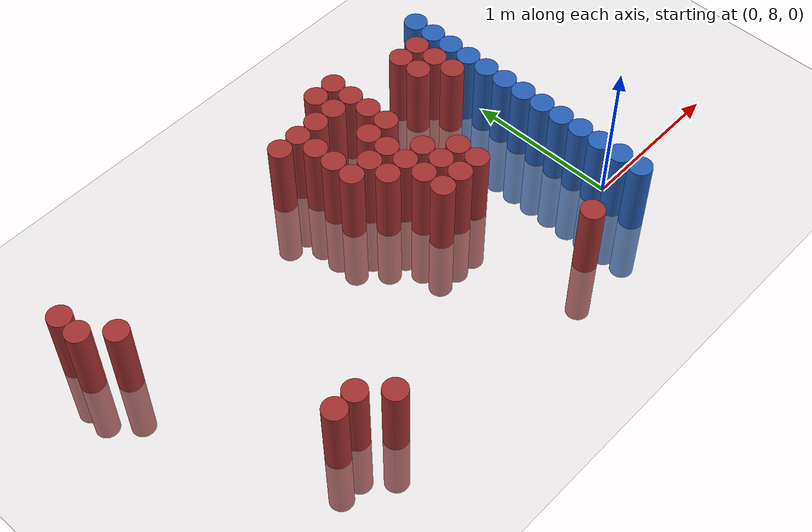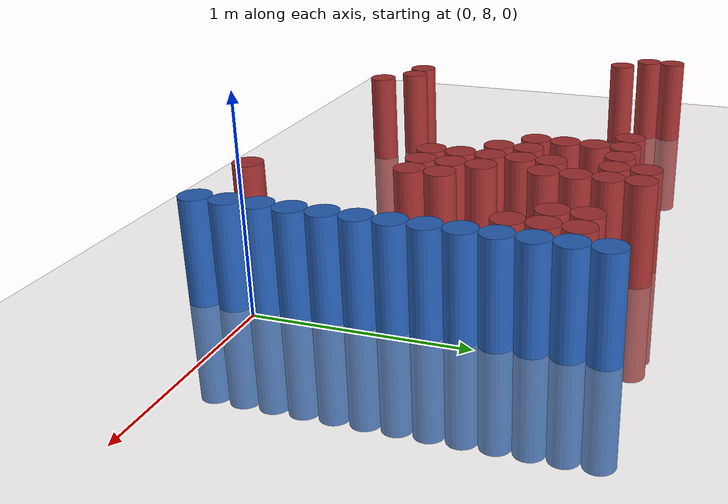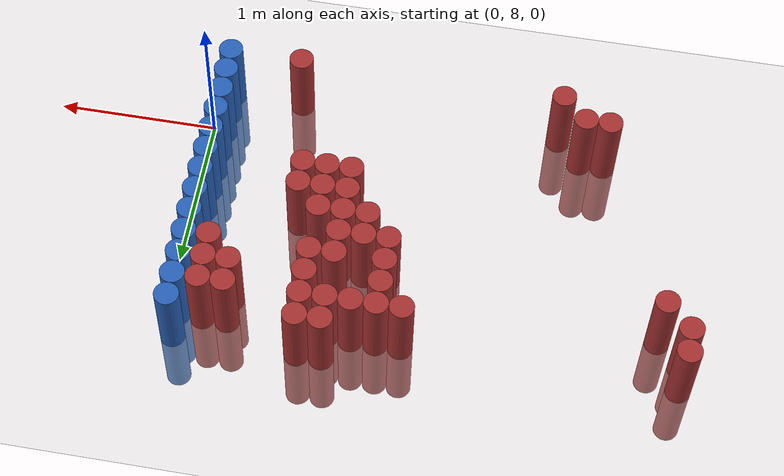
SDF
<sdf version="1.6">
 <world name="default">
  <model name="ground_plane">
   <static>1</static>
   <link name="link">
    <collision name="collision">
     <geometry><plane><normal>0 0 1</normal><size>100 100</size></plane></geometry>
     <surface><friction><ode><mu>100</mu><mu2>50</mu2></ode></friction></surface>
    </collision>
    <visual name="visual">
     <cast_shadows>0</cast_shadows>
     <geometry><plane><normal>0 0 1</normal><size>100 100</size></plane></geometry>
     <material>
      <script><uri>file://media/materials/scripts/gazebo.material</uri><name>Gazebo/Grey</name></script>
     </material>
    </visual>
   </link>
  </model>
  <model name="unit_cylinder_158">
   <static>1</static>
   <pose>-3.075000 9.225000 0.000000 0.000000 0.000000 0.000000</pose>
   <link name="link">
    <inertial>
     <mass>1</mass>
     <inertia><ixx>0.145833</ixx><ixy>0</ixy><ixz>0</ixz><iyy>0.145833</iyy><iyz>0</iyz><izz>0.125</izz></inertia>
    </inertial>
    <collision name="collision">
     <geometry><cylinder><radius>0.075000</radius><length>1</length></cylinder></geometry>
    </collision>
    <visual name="visual">
     <geometry><cylinder><radius>0.075000</radius><length>1</length></cylinder></geometry>
     <material>
      <ambient>0.648000 0.192000 0.192000 1</ambient>
      <diffuse>0.648000 0.192000 0.192000 1</diffuse>
     </material>
     <material>
      <script><name>Gazebo/Grey</name><uri>file://media/materials/scripts/gazebo.material</uri></script>
     </material>
    </visual>
   </link>
  </model>
  <model name="unit_cylinder_159">
   <static>1</static>
   <pose>-3.075000 9.375000 0.000000 0.000000 0.000000 0.000000</pose>
   <link name="link">
    <inertial>
     <mass>1</mass>
     <inertia><ixx>0.145833</ixx><ixy>0</ixy><ixz>0</ixz><iyy>0.145833</iyy><iyz>0</iyz><izz>0.125</izz></inertia>
    </inertial>
    <collision name="collision">
     <geometry><cylinder><radius>0.075000</radius><length>1</length></cylinder></geometry>
    </collision>
    <visual name="visual">
     <geometry><cylinder><radius>0.075000</radius><length>1</length></cylinder></geometry>
     <material>
      <ambient>0.648000 0.192000 0.192000 1</ambient>
      <diffuse>0.648000 0.192000 0.192000 1</diffuse>
     </material>
     <material>
      <script><name>Gazebo/Grey</name><uri>file://media/materials/scripts/gazebo.material</uri></script>
     </material>
    </visual>
   </link>
  </model>
  <model name="unit_cylinder_162">
   <static>1</static>
   <pose>-2.925000 9.075000 0.000000 0.000000 0.000000 0.000000</pose>
   <link name="link">
    <inertial>
     <mass>1</mass>
     <inertia><ixx>0.145833</ixx><ixy>0</ixy><ixz>0</ixz><iyy>0.145833</iyy><iyz>0</iyz><izz>0.125</izz></inertia>
    </inertial>
    <collision name="collision">
     <geometry><cylinder><radius>0.075000</radius><length>1</length></cylinder></geometry>
    </collision>
    <visual name="visual">
     <geometry><cylinder><radius>0.075000</radius><length>1</length></cylinder></geometry>
     <material>
      <ambient>0.648000 0.192000 0.192000 1</ambient>
      <diffuse>0.648000 0.192000 0.192000 1</diffuse>
     </material>
     <material>
      <script><name>Gazebo/Grey</name><uri>file://media/materials/scripts/gazebo.material</uri></script>
     </material>
    </visual>
   </link>
  </model>
  <model name="unit_cylinder_169">
   <static>1</static>
   <pose>-2.475000 7.875000 0.000000 0.000000 0.000000 0.000000</pose>
   <link name="link">
    <inertial>
     <mass>1</mass>
     <inertia><ixx>0.145833</ixx><ixy>0</ixy><ixz>0</ixz><iyy>0.145833</iyy><iyz>0</iyz><izz>0.125</izz></inertia>
    </inertial>
    <collision name="collision">
     <geometry><cylinder><radius>0.075000</radius><length>1</length></cylinder></geometry>
    </collision>
    <visual name="visual">
     <geometry><cylinder><radius>0.075000</radius><length>1</length></cylinder></geometry>
     <material>
      <ambient>0.648000 0.192000 0.192000 1</ambient>
      <diffuse>0.648000 0.192000 0.192000 1</diffuse>
     </material>
     <material>
      <script><name>Gazebo/Grey</name><uri>file://media/materials/scripts/gazebo.material</uri></script>
     </material>
    </visual>
   </link>
  </model>
  <model name="unit_cylinder_176">
   <static>1</static>
   <pose>-2.325000 7.875000 0.000000 0.000000 0.000000 0.000000</pose>
   <link name="link">
    <inertial>
     <mass>1</mass>
     <inertia><ixx>0.145833</ixx><ixy>0</ixy><ixz>0</ixz><iyy>0.145833</iyy><iyz>0</iyz><izz>0.125</izz></inertia>
    </inertial>
    <collision name="collision">
     <geometry><cylinder><radius>0.075000</radius><length>1</length></cylinder></geometry>
    </collision>
    <visual name="visual">
     <geometry><cylinder><radius>0.075000</radius><length>1</length></cylinder></geometry>
     <material>
      <ambient>0.648000 0.192000 0.192000 1</ambient>
      <diffuse>0.648000 0.192000 0.192000 1</diffuse>
     </material>
     <material>
      <script><name>Gazebo/Grey</name><uri>file://media/materials/scripts/gazebo.material</uri></script>
     </material>
    </visual>
   </link>
  </model>
  <model name="unit_cylinder_181">
   <static>1</static>
   <pose>-2.175000 7.725000 0.000000 0.000000 0.000000 0.000000</pose>
   <link name="link">
    <inertial>
     <mass>1</mass>
     <inertia><ixx>0.145833</ixx><ixy>0</ixy><ixz>0</ixz><iyy>0.145833</iyy><iyz>0</iyz><izz>0.125</izz></inertia>
    </inertial>
    <collision name="collision">
     <geometry><cylinder><radius>0.075000</radius><length>1</length></cylinder></geometry>
    </collision>
    <visual name="visual">
     <geometry><cylinder><radius>0.075000</radius><length>1</length></cylinder></geometry>
     <material>
      <ambient>0.648000 0.192000 0.192000 1</ambient>
      <diffuse>0.648000 0.192000 0.192000 1</diffuse>
     </material>
     <material>
      <script><name>Gazebo/Grey</name><uri>file://media/materials/scripts/gazebo.material</uri></script>
     </material>
    </visual>
   </link>
  </model>
  <model name="unit_cylinder_197">
   <static>1</static>
   <pose>-1.425000 9.375000 0.000000 0.000000 0.000000 0.000000</pose>
   <link name="link">
    <inertial>
     <mass>1</mass>
     <inertia><ixx>0.145833</ixx><ixy>0</ixy><ixz>0</ixz><iyy>0.145833</iyy><iyz>0</iyz><izz>0.125</izz></inertia>
    </inertial>
    <collision name="collision">
     <geometry><cylinder><radius>0.075000</radius><length>1</length></cylinder></geometry>
    </collision>
    <visual name="visual">
     <geometry><cylinder><radius>0.075000</radius><length>1</length></cylinder></geometry>
     <material>
      <ambient>0.648000 0.192000 0.192000 1</ambient>
      <diffuse>0.648000 0.192000 0.192000 1</diffuse>
     </material>
     <material>
      <script><name>Gazebo/Grey</name><uri>file://media/materials/scripts/gazebo.material</uri></script>
     </material>
    </visual>
   </link>
  </model>
  <model name="unit_cylinder_199">
   <static>1</static>
   <pose>-1.275000 8.925000 0.000000 0.000000 0.000000 0.000000</pose>
   <link name="link">
    <inertial>
     <mass>1</mass>
     <inertia><ixx>0.145833</ixx><ixy>0</ixy><ixz>0</ixz><iyy>0.145833</iyy><iyz>0</iyz><izz>0.125</izz></inertia>
    </inertial>
    <collision name="collision">
     <geometry><cylinder><radius>0.075000</radius><length>1</length></cylinder></geometry>
    </collision>
    <visual name="visual">
     <geometry><cylinder><radius>0.075000</radius><length>1</length></cylinder></geometry>
     <material>
      <ambient>0.648000 0.192000 0.192000 1</ambient>
      <diffuse>0.648000 0.192000 0.192000 1</diffuse>
     </material>
     <material>
      <script><name>Gazebo/Grey</name><uri>file://media/materials/scripts/gazebo.material</uri></script>
     </material>
    </visual>
   </link>
  </model>
  <model name="unit_cylinder_200">
   <static>1</static>
   <pose>-1.275000 9.075000 0.000000 0.000000 0.000000 0.000000</pose>
   <link name="link">
    <inertial>
     <mass>1</mass>
     <inertia><ixx>0.145833</ixx><ixy>0</ixy><ixz>0</ixz><iyy>0.145833</iyy><iyz>0</iyz><izz>0.125</izz></inertia>
    </inertial>
    <collision name="collision">
     <geometry><cylinder><radius>0.075000</radius><length>1</length></cylinder></geometry>
    </collision>
    <visual name="visual">
     <geometry><cylinder><radius>0.075000</radius><length>1</length></cylinder></geometry>
     <material>
      <ambient>0.648000 0.192000 0.192000 1</ambient>
      <diffuse>0.648000 0.192000 0.192000 1</diffuse>
     </material>
     <material>
      <script><name>Gazebo/Grey</name><uri>file://media/materials/scripts/gazebo.material</uri></script>
     </material>
    </visual>
   </link>
  </model>
  <model name="unit_cylinder_201">
   <static>1</static>
   <pose>-1.275000 9.225000 0.000000 0.000000 0.000000 0.000000</pose>
   <link name="link">
    <inertial>
     <mass>1</mass>
     <inertia><ixx>0.145833</ixx><ixy>0</ixy><ixz>0</ixz><iyy>0.145833</iyy><iyz>0</iyz><izz>0.125</izz></inertia>
    </inertial>
    <collision name="collision">
     <geometry><cylinder><radius>0.075000</radius><length>1</length></cylinder></geometry>
    </collision>
    <visual name="visual">
     <geometry><cylinder><radius>0.075000</radius><length>1</length></cylinder></geometry>
     <material>
      <ambient>0.648000 0.192000 0.192000 1</ambient>
      <diffuse>0.648000 0.192000 0.192000 1</diffuse>
     </material>
     <material>
      <script><name>Gazebo/Grey</name><uri>file://media/materials/scripts/gazebo.material</uri></script>
     </material>
    </visual>
   </link>
  </model>
  <model name="unit_cylinder_202">
   <static>1</static>
   <pose>-1.275000 9.375000 0.000000 0.000000 0.000000 0.000000</pose>
   <link name="link">
    <inertial>
     <mass>1</mass>
     <inertia><ixx>0.145833</ixx><ixy>0</ixy><ixz>0</ixz><iyy>0.145833</iyy><iyz>0</iyz><izz>0.125</izz></inertia>
    </inertial>
    <collision name="collision">
     <geometry><cylinder><radius>0.075000</radius><length>1</length></cylinder></geometry>
    </collision>
    <visual name="visual">
     <geometry><cylinder><radius>0.075000</radius><length>1</length></cylinder></geometry>
     <material>
      <ambient>0.648000 0.192000 0.192000 1</ambient>
      <diffuse>0.648000 0.192000 0.192000 1</diffuse>
     </material>
     <material>
      <script><name>Gazebo/Grey</name><uri>file://media/materials/scripts/gazebo.material</uri></script>
     </material>
    </visual>
   </link>
  </model>
  <model name="unit_cylinder_205">
   <static>1</static>
   <pose>-1.125000 8.775000 0.000000 0.000000 0.000000 0.000000</pose>
   <link name="link">
    <inertial>
     <mass>1</mass>
     <inertia><ixx>0.145833</ixx><ixy>0</ixy><ixz>0</ixz><iyy>0.145833</iyy><iyz>0</iyz><izz>0.125</izz></inertia>
    </inertial>
    <collision name="collision">
     <geometry><cylinder><radius>0.075000</radius><length>1</length></cylinder></geometry>
    </collision>
    <visual name="visual">
     <geometry><cylinder><radius>0.075000</radius><length>1</length></cylinder></geometry>
     <material>
      <ambient>0.648000 0.192000 0.192000 1</ambient>
      <diffuse>0.648000 0.192000 0.192000 1</diffuse>
     </material>
     <material>
      <script><name>Gazebo/Grey</name><uri>file://media/materials/scripts/gazebo.material</uri></script>
     </material>
    </visual>
   </link>
  </model>
  <model name="unit_cylinder_206">
   <static>1</static>
   <pose>-1.125000 8.925000 0.000000 0.000000 0.000000 0.000000</pose>
   <link name="link">
    <inertial>
     <mass>1</mass>
     <inertia><ixx>0.145833</ixx><ixy>0</ixy><ixz>0</ixz><iyy>0.145833</iyy><iyz>0</iyz><izz>0.125</izz></inertia>
    </inertial>
    <collision name="collision">
     <geometry><cylinder><radius>0.075000</radius><length>1</length></cylinder></geometry>
    </collision>
    <visual name="visual">
     <geometry><cylinder><radius>0.075000</radius><length>1</length></cylinder></geometry>
     <material>
      <ambient>0.648000 0.192000 0.192000 1</ambient>
      <diffuse>0.648000 0.192000 0.192000 1</diffuse>
     </material>
     <material>
      <script><name>Gazebo/Grey</name><uri>file://media/materials/scripts/gazebo.material</uri></script>
     </material>
    </visual>
   </link>
  </model>
  <model name="unit_cylinder_207">
   <static>1</static>
   <pose>-1.125000 9.375000 0.000000 0.000000 0.000000 0.000000</pose>
   <link name="link">
    <inertial>
     <mass>1</mass>
     <inertia><ixx>0.145833</ixx><ixy>0</ixy><ixz>0</ixz><iyy>0.145833</iyy><iyz>0</iyz><izz>0.125</izz></inertia>
    </inertial>
    <collision name="collision">
     <geometry><cylinder><radius>0.075000</radius><length>1</length></cylinder></geometry>
    </collision>
    <visual name="visual">
     <geometry><cylinder><radius>0.075000</radius><length>1</length></cylinder></geometry>
     <material>
      <ambient>0.648000 0.192000 0.192000 1</ambient>
      <diffuse>0.648000 0.192000 0.192000 1</diffuse>
     </material>
     <material>
      <script><name>Gazebo/Grey</name><uri>file://media/materials/scripts/gazebo.material</uri></script>
     </material>
    </visual>
   </link>
  </model>
  <model name="unit_cylinder_215">
   <static>1</static>
   <pose>-0.975000 8.475000 0.000000 0.000000 0.000000 0.000000</pose>
   <link name="link">
    <inertial>
     <mass>1</mass>
     <inertia><ixx>0.145833</ixx><ixy>0</ixy><ixz>0</ixz><iyy>0.145833</iyy><iyz>0</iyz><izz>0.125</izz></inertia>
    </inertial>
    <collision name="collision">
     <geometry><cylinder><radius>0.075000</radius><length>1</length></cylinder></geometry>
    </collision>
    <visual name="visual">
     <geometry><cylinder><radius>0.075000</radius><length>1</length></cylinder></geometry>
     <material>
      <ambient>0.648000 0.192000 0.192000 1</ambient>
      <diffuse>0.648000 0.192000 0.192000 1</diffuse>
     </material>
     <material>
      <script><name>Gazebo/Grey</name><uri>file://media/materials/scripts/gazebo.material</uri></script>
     </material>
    </visual>
   </link>
  </model>
  <model name="unit_cylinder_216">
   <static>1</static>
   <pose>-0.975000 8.625000 0.000000 0.000000 0.000000 0.000000</pose>
   <link name="link">
    <inertial>
     <mass>1</mass>
     <inertia><ixx>0.145833</ixx><ixy>0</ixy><ixz>0</ixz><iyy>0.145833</iyy><iyz>0</iyz><izz>0.125</izz></inertia>
    </inertial>
    <collision name="collision">
     <geometry><cylinder><radius>0.075000</radius><length>1</length></cylinder></geometry>
    </collision>
    <visual name="visual">
     <geometry><cylinder><radius>0.075000</radius><length>1</length></cylinder></geometry>
     <material>
      <ambient>0.648000 0.192000 0.192000 1</ambient>
      <diffuse>0.648000 0.192000 0.192000 1</diffuse>
     </material>
     <material>
      <script><name>Gazebo/Grey</name><uri>file://media/materials/scripts/gazebo.material</uri></script>
     </material>
    </visual>
   </link>
  </model>
  <model name="unit_cylinder_217">
   <static>1</static>
   <pose>-0.975000 8.775000 0.000000 0.000000 0.000000 0.000000</pose>
   <link name="link">
    <inertial>
     <mass>1</mass>
     <inertia><ixx>0.145833</ixx><ixy>0</ixy><ixz>0</ixz><iyy>0.145833</iyy><iyz>0</iyz><izz>0.125</izz></inertia>
    </inertial>
    <collision name="collision">
     <geometry><cylinder><radius>0.075000</radius><length>1</length></cylinder></geometry>
    </collision>
    <visual name="visual">
     <geometry><cylinder><radius>0.075000</radius><length>1</length></cylinder></geometry>
     <material>
      <ambient>0.648000 0.192000 0.192000 1</ambient>
      <diffuse>0.648000 0.192000 0.192000 1</diffuse>
     </material>
     <material>
      <script><name>Gazebo/Grey</name><uri>file://media/materials/scripts/gazebo.material</uri></script>
     </material>
    </visual>
   </link>
  </model>
  <model name="unit_cylinder_218">
   <static>1</static>
   <pose>-0.975000 8.925000 0.000000 0.000000 0.000000 0.000000</pose>
   <link name="link">
    <inertial>
     <mass>1</mass>
     <inertia><ixx>0.145833</ixx><ixy>0</ixy><ixz>0</ixz><iyy>0.145833</iyy><iyz>0</iyz><izz>0.125</izz></inertia>
    </inertial>
    <collision name="collision">
     <geometry><cylinder><radius>0.075000</radius><length>1</length></cylinder></geometry>
    </collision>
    <visual name="visual">
     <geometry><cylinder><radius>0.075000</radius><length>1</length></cylinder></geometry>
     <material>
      <ambient>0.648000 0.192000 0.192000 1</ambient>
      <diffuse>0.648000 0.192000 0.192000 1</diffuse>
     </material>
     <material>
      <script><name>Gazebo/Grey</name><uri>file://media/materials/scripts/gazebo.material</uri></script>
     </material>
    </visual>
   </link>
  </model>
  <model name="unit_cylinder_219">
   <static>1</static>
   <pose>-0.975000 9.075000 0.000000 0.000000 0.000000 0.000000</pose>
   <link name="link">
    <inertial>
     <mass>1</mass>
     <inertia><ixx>0.145833</ixx><ixy>0</ixy><ixz>0</ixz><iyy>0.145833</iyy><iyz>0</iyz><izz>0.125</izz></inertia>
    </inertial>
    <collision name="collision">
     <geometry><cylinder><radius>0.075000</radius><length>1</length></cylinder></geometry>
    </collision>
    <visual name="visual">
     <geometry><cylinder><radius>0.075000</radius><length>1</length></cylinder></geometry>
     <material>
      <ambient>0.648000 0.192000 0.192000 1</ambient>
      <diffuse>0.648000 0.192000 0.192000 1</diffuse>
     </material>
     <material>
      <script><name>Gazebo/Grey</name><uri>file://media/materials/scripts/gazebo.material</uri></script>
     </material>
    </visual>
   </link>
  </model>
  <model name="unit_cylinder_220">
   <static>1</static>
   <pose>-0.975000 9.375000 0.000000 0.000000 0.000000 0.000000</pose>
   <link name="link">
    <inertial>
     <mass>1</mass>
     <inertia><ixx>0.145833</ixx><ixy>0</ixy><ixz>0</ixz><iyy>0.145833</iyy><iyz>0</iyz><izz>0.125</izz></inertia>
    </inertial>
    <collision name="collision">
     <geometry><cylinder><radius>0.075000</radius><length>1</length></cylinder></geometry>
    </collision>
    <visual name="visual">
     <geometry><cylinder><radius>0.075000</radius><length>1</length></cylinder></geometry>
     <material>
      <ambient>0.648000 0.192000 0.192000 1</ambient>
      <diffuse>0.648000 0.192000 0.192000 1</diffuse>
     </material>
     <material>
      <script><name>Gazebo/Grey</name><uri>file://media/materials/scripts/gazebo.material</uri></script>
     </material>
    </visual>
   </link>
  </model>
  <model name="unit_cylinder_221">
   <static>1</static>
   <pose>-0.975000 9.525000 0.000000 0.000000 0.000000 0.000000</pose>
   <link name="link">
    <inertial>
     <mass>1</mass>
     <inertia><ixx>0.145833</ixx><ixy>0</ixy><ixz>0</ixz><iyy>0.145833</iyy><iyz>0</iyz><izz>0.125</izz></inertia>
    </inertial>
    <collision name="collision">
     <geometry><cylinder><radius>0.075000</radius><length>1</length></cylinder></geometry>
    </collision>
    <visual name="visual">
     <geometry><cylinder><radius>0.075000</radius><length>1</length></cylinder></geometry>
     <material>
      <ambient>0.648000 0.192000 0.192000 1</ambient>
      <diffuse>0.648000 0.192000 0.192000 1</diffuse>
     </material>
     <material>
      <script><name>Gazebo/Grey</name><uri>file://media/materials/scripts/gazebo.material</uri></script>
     </material>
    </visual>
   </link>
  </model>
  <model name="unit_cylinder_227">
   <static>1</static>
   <pose>-0.825000 8.475000 0.000000 0.000000 0.000000 0.000000</pose>
   <link name="link">
    <inertial>
     <mass>1</mass>
     <inertia><ixx>0.145833</ixx><ixy>0</ixy><ixz>0</ixz><iyy>0.145833</iyy><iyz>0</iyz><izz>0.125</izz></inertia>
    </inertial>
    <collision name="collision">
     <geometry><cylinder><radius>0.075000</radius><length>1</length></cylinder></geometry>
    </collision>
    <visual name="visual">
     <geometry><cylinder><radius>0.075000</radius><length>1</length></cylinder></geometry>
     <material>
      <ambient>0.648000 0.192000 0.192000 1</ambient>
      <diffuse>0.648000 0.192000 0.192000 1</diffuse>
     </material>
     <material>
      <script><name>Gazebo/Grey</name><uri>file://media/materials/scripts/gazebo.material</uri></script>
     </material>
    </visual>
   </link>
  </model>
  <model name="unit_cylinder_228">
   <static>1</static>
   <pose>-0.825000 8.625000 0.000000 0.000000 0.000000 0.000000</pose>
   <link name="link">
    <inertial>
     <mass>1</mass>
     <inertia><ixx>0.145833</ixx><ixy>0</ixy><ixz>0</ixz><iyy>0.145833</iyy><iyz>0</iyz><izz>0.125</izz></inertia>
    </inertial>
    <collision name="collision">
     <geometry><cylinder><radius>0.075000</radius><length>1</length></cylinder></geometry>
    </collision>
    <visual name="visual">
     <geometry><cylinder><radius>0.075000</radius><length>1</length></cylinder></geometry>
     <material>
      <ambient>0.648000 0.192000 0.192000 1</ambient>
      <diffuse>0.648000 0.192000 0.192000 1</diffuse>
     </material>
     <material>
      <script><name>Gazebo/Grey</name><uri>file://media/materials/scripts/gazebo.material</uri></script>
     </material>
    </visual>
   </link>
  </model>
  <model name="unit_cylinder_229">
   <static>1</static>
   <pose>-0.825000 8.775000 0.000000 0.000000 0.000000 0.000000</pose>
   <link name="link">
    <inertial>
     <mass>1</mass>
     <inertia><ixx>0.145833</ixx><ixy>0</ixy><ixz>0</ixz><iyy>0.145833</iyy><iyz>0</iyz><izz>0.125</izz></inertia>
    </inertial>
    <collision name="collision">
     <geometry><cylinder><radius>0.075000</radius><length>1</length></cylinder></geometry>
    </collision>
    <visual name="visual">
     <geometry><cylinder><radius>0.075000</radius><length>1</length></cylinder></geometry>
     <material>
      <ambient>0.648000 0.192000 0.192000 1</ambient>
      <diffuse>0.648000 0.192000 0.192000 1</diffuse>
     </material>
     <material>
      <script><name>Gazebo/Grey</name><uri>file://media/materials/scripts/gazebo.material</uri></script>
     </material>
    </visual>
   </link>
  </model>
  <model name="unit_cylinder_230">
   <static>1</static>
   <pose>-0.825000 9.075000 0.000000 0.000000 0.000000 0.000000</pose>
   <link name="link">
    <inertial>
     <mass>1</mass>
     <inertia><ixx>0.145833</ixx><ixy>0</ixy><ixz>0</ixz><iyy>0.145833</iyy><iyz>0</iyz><izz>0.125</izz></inertia>
    </inertial>
    <collision name="collision">
     <geometry><cylinder><radius>0.075000</radius><length>1</length></cylinder></geometry>
    </collision>
    <visual name="visual">
     <geometry><cylinder><radius>0.075000</radius><length>1</length></cylinder></geometry>
     <material>
      <ambient>0.648000 0.192000 0.192000 1</ambient>
      <diffuse>0.648000 0.192000 0.192000 1</diffuse>
     </material>
     <material>
      <script><name>Gazebo/Grey</name><uri>file://media/materials/scripts/gazebo.material</uri></script>
     </material>
    </visual>
   </link>
  </model>
  <model name="unit_cylinder_231">
   <static>1</static>
   <pose>-0.825000 9.225000 0.000000 0.000000 0.000000 0.000000</pose>
   <link name="link">
    <inertial>
     <mass>1</mass>
     <inertia><ixx>0.145833</ixx><ixy>0</ixy><ixz>0</ixz><iyy>0.145833</iyy><iyz>0</iyz><izz>0.125</izz></inertia>
    </inertial>
    <collision name="collision">
     <geometry><cylinder><radius>0.075000</radius><length>1</length></cylinder></geometry>
    </collision>
    <visual name="visual">
     <geometry><cylinder><radius>0.075000</radius><length>1</length></cylinder></geometry>
     <material>
      <ambient>0.648000 0.192000 0.192000 1</ambient>
      <diffuse>0.648000 0.192000 0.192000 1</diffuse>
     </material>
     <material>
      <script><name>Gazebo/Grey</name><uri>file://media/materials/scripts/gazebo.material</uri></script>
     </material>
    </visual>
   </link>
  </model>
  <model name="unit_cylinder_232">
   <static>1</static>
   <pose>-0.825000 9.375000 0.000000 0.000000 0.000000 0.000000</pose>
   <link name="link">
    <inertial>
     <mass>1</mass>
     <inertia><ixx>0.145833</ixx><ixy>0</ixy><ixz>0</ixz><iyy>0.145833</iyy><iyz>0</iyz><izz>0.125</izz></inertia>
    </inertial>
    <collision name="collision">
     <geometry><cylinder><radius>0.075000</radius><length>1</length></cylinder></geometry>
    </collision>
    <visual name="visual">
     <geometry><cylinder><radius>0.075000</radius><length>1</length></cylinder></geometry>
     <material>
      <ambient>0.648000 0.192000 0.192000 1</ambient>
      <diffuse>0.648000 0.192000 0.192000 1</diffuse>
     </material>
     <material>
      <script><name>Gazebo/Grey</name><uri>file://media/materials/scripts/gazebo.material</uri></script>
     </material>
    </visual>
   </link>
  </model>
  <model name="unit_cylinder_233">
   <static>1</static>
   <pose>-0.825000 9.525000 0.000000 0.000000 0.000000 0.000000</pose>
   <link name="link">
    <inertial>
     <mass>1</mass>
     <inertia><ixx>0.145833</ixx><ixy>0</ixy><ixz>0</ixz><iyy>0.145833</iyy><iyz>0</iyz><izz>0.125</izz></inertia>
    </inertial>
    <collision name="collision">
     <geometry><cylinder><radius>0.075000</radius><length>1</length></cylinder></geometry>
    </collision>
    <visual name="visual">
     <geometry><cylinder><radius>0.075000</radius><length>1</length></cylinder></geometry>
     <material>
      <ambient>0.648000 0.192000 0.192000 1</ambient>
      <diffuse>0.648000 0.192000 0.192000 1</diffuse>
     </material>
     <material>
      <script><name>Gazebo/Grey</name><uri>file://media/materials/scripts/gazebo.material</uri></script>
     </material>
    </visual>
   </link>
  </model>
  <model name="unit_cylinder_241">
   <static>1</static>
   <pose>-0.675000 8.475000 0.000000 0.000000 0.000000 0.000000</pose>
   <link name="link">
    <inertial>
     <mass>1</mass>
     <inertia><ixx>0.145833</ixx><ixy>0</ixy><ixz>0</ixz><iyy>0.145833</iyy><iyz>0</iyz><izz>0.125</izz></inertia>
    </inertial>
    <collision name="collision">
     <geometry><cylinder><radius>0.075000</radius><length>1</length></cylinder></geometry>
    </collision>
    <visual name="visual">
     <geometry><cylinder><radius>0.075000</radius><length>1</length></cylinder></geometry>
     <material>
      <ambient>0.648000 0.192000 0.192000 1</ambient>
      <diffuse>0.648000 0.192000 0.192000 1</diffuse>
     </material>
     <material>
      <script><name>Gazebo/Grey</name><uri>file://media/materials/scripts/gazebo.material</uri></script>
     </material>
    </visual>
   </link>
  </model>
  <model name="unit_cylinder_242">
   <static>1</static>
   <pose>-0.675000 8.625000 0.000000 0.000000 0.000000 0.000000</pose>
   <link name="link">
    <inertial>
     <mass>1</mass>
     <inertia><ixx>0.145833</ixx><ixy>0</ixy><ixz>0</ixz><iyy>0.145833</iyy><iyz>0</iyz><izz>0.125</izz></inertia>
    </inertial>
    <collision name="collision">
     <geometry><cylinder><radius>0.075000</radius><length>1</length></cylinder></geometry>
    </collision>
    <visual name="visual">
     <geometry><cylinder><radius>0.075000</radius><length>1</length></cylinder></geometry>
     <material>
      <ambient>0.648000 0.192000 0.192000 1</ambient>
      <diffuse>0.648000 0.192000 0.192000 1</diffuse>
     </material>
     <material>
      <script><name>Gazebo/Grey</name><uri>file://media/materials/scripts/gazebo.material</uri></script>
     </material>
    </visual>
   </link>
  </model>
  <model name="unit_cylinder_247">
   <static>1</static>
   <pose>-0.525000 7.725000 0.000000 0.000000 0.000000 0.000000</pose>
   <link name="link">
    <inertial>
     <mass>1</mass>
     <inertia><ixx>0.145833</ixx><ixy>0</ixy><ixz>0</ixz><iyy>0.145833</iyy><iyz>0</iyz><izz>0.125</izz></inertia>
    </inertial>
    <collision name="collision">
     <geometry><cylinder><radius>0.075000</radius><length>1</length></cylinder></geometry>
    </collision>
    <visual name="visual">
     <geometry><cylinder><radius>0.075000</radius><length>1</length></cylinder></geometry>
     <material>
      <ambient>0.648000 0.192000 0.192000 1</ambient>
      <diffuse>0.648000 0.192000 0.192000 1</diffuse>
     </material>
     <material>
      <script><name>Gazebo/Grey</name><uri>file://media/materials/scripts/gazebo.material</uri></script>
     </material>
    </visual>
   </link>
  </model>
  <model name="unit_cylinder_250">
   <static>1</static>
   <pose>-0.375000 9.225000 0.000000 0.000000 0.000000 0.000000</pose>
   <link name="link">
    <inertial>
     <mass>1</mass>
     <inertia><ixx>0.145833</ixx><ixy>0</ixy><ixz>0</ixz><iyy>0.145833</iyy><iyz>0</iyz><izz>0.125</izz></inertia>
    </inertial>
    <collision name="collision">
     <geometry><cylinder><radius>0.075000</radius><length>1</length></cylinder></geometry>
    </collision>
    <visual name="visual">
     <geometry><cylinder><radius>0.075000</radius><length>1</length></cylinder></geometry>
     <material>
      <ambient>0.648000 0.192000 0.192000 1</ambient>
      <diffuse>0.648000 0.192000 0.192000 1</diffuse>
     </material>
     <material>
      <script><name>Gazebo/Grey</name><uri>file://media/materials/scripts/gazebo.material</uri></script>
     </material>
    </visual>
   </link>
  </model>
  <model name="unit_cylinder_251">
   <static>1</static>
   <pose>-0.375000 9.375000 0.000000 0.000000 0.000000 0.000000</pose>
   <link name="link">
    <inertial>
     <mass>1</mass>
     <inertia><ixx>0.145833</ixx><ixy>0</ixy><ixz>0</ixz><iyy>0.145833</iyy><iyz>0</iyz><izz>0.125</izz></inertia>
    </inertial>
    <collision name="collision">
     <geometry><cylinder><radius>0.075000</radius><length>1</length></cylinder></geometry>
    </collision>
    <visual name="visual">
     <geometry><cylinder><radius>0.075000</radius><length>1</length></cylinder></geometry>
     <material>
      <ambient>0.648000 0.192000 0.192000 1</ambient>
      <diffuse>0.648000 0.192000 0.192000 1</diffuse>
     </material>
     <material>
      <script><name>Gazebo/Grey</name><uri>file://media/materials/scripts/gazebo.material</uri></script>
     </material>
    </visual>
   </link>
  </model>
  <model name="unit_cylinder_261">
   <static>1</static>
   <pose>-0.225000 9.075000 0.000000 0.000000 0.000000 0.000000</pose>
   <link name="link">
    <inertial>
     <mass>1</mass>
     <inertia><ixx>0.145833</ixx><ixy>0</ixy><ixz>0</ixz><iyy>0.145833</iyy><iyz>0</iyz><izz>0.125</izz></inertia>
    </inertial>
    <collision name="collision">
     <geometry><cylinder><radius>0.075000</radius><length>1</length></cylinder></geometry>
    </collision>
    <visual name="visual">
     <geometry><cylinder><radius>0.075000</radius><length>1</length></cylinder></geometry>
     <material>
      <ambient>0.648000 0.192000 0.192000 1</ambient>
      <diffuse>0.648000 0.192000 0.192000 1</diffuse>
     </material>
     <material>
      <script><name>Gazebo/Grey</name><uri>file://media/materials/scripts/gazebo.material</uri></script>
     </material>
    </visual>
   </link>
  </model>
  <model name="unit_cylinder_262">
   <static>1</static>
   <pose>-0.225000 9.225000 0.000000 0.000000 0.000000 0.000000</pose>
   <link name="link">
    <inertial>
     <mass>1</mass>
     <inertia><ixx>0.145833</ixx><ixy>0</ixy><ixz>0</ixz><iyy>0.145833</iyy><iyz>0</iyz><izz>0.125</izz></inertia>
    </inertial>
    <collision name="collision">
     <geometry><cylinder><radius>0.075000</radius><length>1</length></cylinder></geometry>
    </collision>
    <visual name="visual">
     <geometry><cylinder><radius>0.075000</radius><length>1</length></cylinder></geometry>
     <material>
      <ambient>0.648000 0.192000 0.192000 1</ambient>
      <diffuse>0.648000 0.192000 0.192000 1</diffuse>
     </material>
     <material>
      <script><name>Gazebo/Grey</name><uri>file://media/materials/scripts/gazebo.material</uri></script>
     </material>
    </visual>
   </link>
  </model>
  <model name="unit_cylinder_263">
   <static>1</static>
   <pose>-0.225000 9.375000 0.000000 0.000000 0.000000 0.000000</pose>
   <link name="link">
    <inertial>
     <mass>1</mass>
     <inertia><ixx>0.145833</ixx><ixy>0</ixy><ixz>0</ixz><iyy>0.145833</iyy><iyz>0</iyz><izz>0.125</izz></inertia>
    </inertial>
    <collision name="collision">
     <geometry><cylinder><radius>0.075000</radius><length>1</length></cylinder></geometry>
    </collision>
    <visual name="visual">
     <geometry><cylinder><radius>0.075000</radius><length>1</length></cylinder></geometry>
     <material>
      <ambient>0.648000 0.192000 0.192000 1</ambient>
      <diffuse>0.648000 0.192000 0.192000 1</diffuse>
     </material>
     <material>
      <script><name>Gazebo/Grey</name><uri>file://media/materials/scripts/gazebo.material</uri></script>
     </material>
    </visual>
   </link>
  </model>
  <model name="unit_cylinder_281">
   <static>1</static>
   <pose>-0.075000 7.725000 0.000000 0.000000 0.000000 0.000000</pose>
   <link name="link">
    <inertial>
     <mass>1</mass>
     <inertia><ixx>0.145833</ixx><ixy>0</ixy><ixz>0</ixz><iyy>0.145833</iyy><iyz>0</iyz><izz>0.125</izz></inertia>
    </inertial>
    <collision name="collision">
     <geometry><cylinder><radius>0.075000</radius><length>1</length></cylinder></geometry>
    </collision>
    <visual name="visual">
     <geometry><cylinder><radius>0.075000</radius><length>1</length></cylinder></geometry>
     <material>
      <ambient>0.152000 0.379000 0.720000 1</ambient>
      <diffuse>0.152000 0.379000 0.720000 1</diffuse>
     </material>
     <material>
      <script><name>Gazebo/Grey</name><uri>file://media/materials/scripts/gazebo.material</uri></script>
     </material>
    </visual>
   </link>
  </model>
  <model name="unit_cylinder_282">
   <static>1</static>
   <pose>-0.075000 7.875000 0.000000 0.000000 0.000000 0.000000</pose>
   <link name="link">
    <inertial>
     <mass>1</mass>
     <inertia><ixx>0.145833</ixx><ixy>0</ixy><ixz>0</ixz><iyy>0.145833</iyy><iyz>0</iyz><izz>0.125</izz></inertia>
    </inertial>
    <collision name="collision">
     <geometry><cylinder><radius>0.075000</radius><length>1</length></cylinder></geometry>
    </collision>
    <visual name="visual">
     <geometry><cylinder><radius>0.075000</radius><length>1</length></cylinder></geometry>
     <material>
      <ambient>0.152000 0.379000 0.720000 1</ambient>
      <diffuse>0.152000 0.379000 0.720000 1</diffuse>
     </material>
     <material>
      <script><name>Gazebo/Grey</name><uri>file://media/materials/scripts/gazebo.material</uri></script>
     </material>
    </visual>
   </link>
  </model>
  <model name="unit_cylinder_283">
   <static>1</static>
   <pose>-0.075000 8.025000 0.000000 0.000000 0.000000 0.000000</pose>
   <link name="link">
    <inertial>
     <mass>1</mass>
     <inertia><ixx>0.145833</ixx><ixy>0</ixy><ixz>0</ixz><iyy>0.145833</iyy><iyz>0</iyz><izz>0.125</izz></inertia>
    </inertial>
    <collision name="collision">
     <geometry><cylinder><radius>0.075000</radius><length>1</length></cylinder></geometry>
    </collision>
    <visual name="visual">
     <geometry><cylinder><radius>0.075000</radius><length>1</length></cylinder></geometry>
     <material>
      <ambient>0.152000 0.379000 0.720000 1</ambient>
      <diffuse>0.152000 0.379000 0.720000 1</diffuse>
     </material>
     <material>
      <script><name>Gazebo/Grey</name><uri>file://media/materials/scripts/gazebo.material</uri></script>
     </material>
    </visual>
   </link>
  </model>
  <model name="unit_cylinder_284">
   <static>1</static>
   <pose>-0.075000 8.175000 0.000000 0.000000 0.000000 0.000000</pose>
   <link name="link">
    <inertial>
     <mass>1</mass>
     <inertia><ixx>0.145833</ixx><ixy>0</ixy><ixz>0</ixz><iyy>0.145833</iyy><iyz>0</iyz><izz>0.125</izz></inertia>
    </inertial>
    <collision name="collision">
     <geometry><cylinder><radius>0.075000</radius><length>1</length></cylinder></geometry>
    </collision>
    <visual name="visual">
     <geometry><cylinder><radius>0.075000</radius><length>1</length></cylinder></geometry>
     <material>
      <ambient>0.152000 0.379000 0.720000 1</ambient>
      <diffuse>0.152000 0.379000 0.720000 1</diffuse>
     </material>
     <material>
      <script><name>Gazebo/Grey</name><uri>file://media/materials/scripts/gazebo.material</uri></script>
     </material>
    </visual>
   </link>
  </model>
  <model name="unit_cylinder_285">
   <static>1</static>
   <pose>-0.075000 8.325000 0.000000 0.000000 0.000000 0.000000</pose>
   <link name="link">
    <inertial>
     <mass>1</mass>
     <inertia><ixx>0.145833</ixx><ixy>0</ixy><ixz>0</ixz><iyy>0.145833</iyy><iyz>0</iyz><izz>0.125</izz></inertia>
    </inertial>
    <collision name="collision">
     <geometry><cylinder><radius>0.075000</radius><length>1</length></cylinder></geometry>
    </collision>
    <visual name="visual">
     <geometry><cylinder><radius>0.075000</radius><length>1</length></cylinder></geometry>
     <material>
      <ambient>0.152000 0.379000 0.720000 1</ambient>
      <diffuse>0.152000 0.379000 0.720000 1</diffuse>
     </material>
     <material>
      <script><name>Gazebo/Grey</name><uri>file://media/materials/scripts/gazebo.material</uri></script>
     </material>
    </visual>
   </link>
  </model>
  <model name="unit_cylinder_286">
   <static>1</static>
   <pose>-0.075000 8.475000 0.000000 0.000000 0.000000 0.000000</pose>
   <link name="link">
    <inertial>
     <mass>1</mass>
     <inertia><ixx>0.145833</ixx><ixy>0</ixy><ixz>0</ixz><iyy>0.145833</iyy><iyz>0</iyz><izz>0.125</izz></inertia>
    </inertial>
    <collision name="collision">
     <geometry><cylinder><radius>0.075000</radius><length>1</length></cylinder></geometry>
    </collision>
    <visual name="visual">
     <geometry><cylinder><radius>0.075000</radius><length>1</length></cylinder></geometry>
     <material>
      <ambient>0.152000 0.379000 0.720000 1</ambient>
      <diffuse>0.152000 0.379000 0.720000 1</diffuse>
     </material>
     <material>
      <script><name>Gazebo/Grey</name><uri>file://media/materials/scripts/gazebo.material</uri></script>
     </material>
    </visual>
   </link>
  </model>
  <model name="unit_cylinder_287">
   <static>1</static>
   <pose>-0.075000 8.625000 0.000000 0.000000 0.000000 0.000000</pose>
   <link name="link">
    <inertial>
     <mass>1</mass>
     <inertia><ixx>0.145833</ixx><ixy>0</ixy><ixz>0</ixz><iyy>0.145833</iyy><iyz>0</iyz><izz>0.125</izz></inertia>
    </inertial>
    <collision name="collision">
     <geometry><cylinder><radius>0.075000</radius><length>1</length></cylinder></geometry>
    </collision>
    <visual name="visual">
     <geometry><cylinder><radius>0.075000</radius><length>1</length></cylinder></geometry>
     <material>
      <ambient>0.152000 0.379000 0.720000 1</ambient>
      <diffuse>0.152000 0.379000 0.720000 1</diffuse>
     </material>
     <material>
      <script><name>Gazebo/Grey</name><uri>file://media/materials/scripts/gazebo.material</uri></script>
     </material>
    </visual>
   </link>
  </model>
  <model name="unit_cylinder_288">
   <static>1</static>
   <pose>-0.075000 8.775000 0.000000 0.000000 0.000000 0.000000</pose>
   <link name="link">
    <inertial>
     <mass>1</mass>
     <inertia><ixx>0.145833</ixx><ixy>0</ixy><ixz>0</ixz><iyy>0.145833</iyy><iyz>0</iyz><izz>0.125</izz></inertia>
    </inertial>
    <collision name="collision">
     <geometry><cylinder><radius>0.075000</radius><length>1</length></cylinder></geometry>
    </collision>
    <visual name="visual">
     <geometry><cylinder><radius>0.075000</radius><length>1</length></cylinder></geometry>
     <material>
      <ambient>0.152000 0.379000 0.720000 1</ambient>
      <diffuse>0.152000 0.379000 0.720000 1</diffuse>
     </material>
     <material>
      <script><name>Gazebo/Grey</name><uri>file://media/materials/scripts/gazebo.material</uri></script>
     </material>
    </visual>
   </link>
  </model>
  <model name="unit_cylinder_289">
   <static>1</static>
   <pose>-0.075000 8.925000 0.000000 0.000000 0.000000 0.000000</pose>
   <link name="link">
    <inertial>
     <mass>1</mass>
     <inertia><ixx>0.145833</ixx><ixy>0</ixy><ixz>0</ixz><iyy>0.145833</iyy><iyz>0</iyz><izz>0.125</izz></inertia>
    </inertial>
    <collision name="collision">
     <geometry><cylinder><radius>0.075000</radius><length>1</length></cylinder></geometry>
    </collision>
    <visual name="visual">
     <geometry><cylinder><radius>0.075000</radius><length>1</length></cylinder></geometry>
     <material>
      <ambient>0.152000 0.379000 0.720000 1</ambient>
      <diffuse>0.152000 0.379000 0.720000 1</diffuse>
     </material>
     <material>
      <script><name>Gazebo/Grey</name><uri>file://media/materials/scripts/gazebo.material</uri></script>
     </material>
    </visual>
   </link>
  </model>
  <model name="unit_cylinder_290">
   <static>1</static>
   <pose>-0.075000 9.075000 0.000000 0.000000 0.000000 0.000000</pose>
   <link name="link">
    <inertial>
     <mass>1</mass>
     <inertia><ixx>0.145833</ixx><ixy>0</ixy><ixz>0</ixz><iyy>0.145833</iyy><iyz>0</iyz><izz>0.125</izz></inertia>
    </inertial>
    <collision name="collision">
     <geometry><cylinder><radius>0.075000</radius><length>1</length></cylinder></geometry>
    </collision>
    <visual name="visual">
     <geometry><cylinder><radius>0.075000</radius><length>1</length></cylinder></geometry>
     <material>
      <ambient>0.152000 0.379000 0.720000 1</ambient>
      <diffuse>0.152000 0.379000 0.720000 1</diffuse>
     </material>
     <material>
      <script><name>Gazebo/Grey</name><uri>file://media/materials/scripts/gazebo.material</uri></script>
     </material>
    </visual>
   </link>
  </model>
  <model name="unit_cylinder_291">
   <static>1</static>
   <pose>-0.075000 9.225000 0.000000 0.000000 0.000000 0.000000</pose>
   <link name="link">
    <inertial>
     <mass>1</mass>
     <inertia><ixx>0.145833</ixx><ixy>0</ixy><ixz>0</ixz><iyy>0.145833</iyy><iyz>0</iyz><izz>0.125</izz></inertia>
    </inertial>
    <collision name="collision">
     <geometry><cylinder><radius>0.075000</radius><length>1</length></cylinder></geometry>
    </collision>
    <visual name="visual">
     <geometry><cylinder><radius>0.075000</radius><length>1</length></cylinder></geometry>
     <material>
      <ambient>0.152000 0.379000 0.720000 1</ambient>
      <diffuse>0.152000 0.379000 0.720000 1</diffuse>
     </material>
     <material>
      <script><name>Gazebo/Grey</name><uri>file://media/materials/scripts/gazebo.material</uri></script>
     </material>
    </visual>
   </link>
  </model>
  <model name="unit_cylinder_292">
   <static>1</static>
   <pose>-0.075000 9.375000 0.000000 0.000000 0.000000 0.000000</pose>
   <link name="link">
    <inertial>
     <mass>1</mass>
     <inertia><ixx>0.145833</ixx><ixy>0</ixy><ixz>0</ixz><iyy>0.145833</iyy><iyz>0</iyz><izz>0.125</izz></inertia>
    </inertial>
    <collision name="collision">
     <geometry><cylinder><radius>0.075000</radius><length>1</length></cylinder></geometry>
    </collision>
    <visual name="visual">
     <geometry><cylinder><radius>0.075000</radius><length>1</length></cylinder></geometry>
     <material>
      <ambient>0.152000 0.379000 0.720000 1</ambient>
      <diffuse>0.152000 0.379000 0.720000 1</diffuse>
     </material>
     <material>
      <script><name>Gazebo/Grey</name><uri>file://media/materials/scripts/gazebo.material</uri></script>
     </material>
    </visual>
   </link>
  </model>
  <model name="unit_cylinder_293">
   <static>1</static>
   <pose>-0.075000 9.525000 0.000000 0.000000 0.000000 0.000000</pose>
   <link name="link">
    <inertial>
     <mass>1</mass>
     <inertia><ixx>0.145833</ixx><ixy>0</ixy><ixz>0</ixz><iyy>0.145833</iyy><iyz>0</iyz><izz>0.125</izz></inertia>
    </inertial>
    <collision name="collision">
     <geometry><cylinder><radius>0.075000</radius><length>1</length></cylinder></geometry>
    </collision>
    <visual name="visual">
     <geometry><cylinder><radius>0.075000</radius><length>1</length></cylinder></geometry>
     <material>
      <ambient>0.152000 0.379000 0.720000 1</ambient>
      <diffuse>0.152000 0.379000 0.720000 1</diffuse>
     </material>
     <material>
      <script><name>Gazebo/Grey</name><uri>file://media/materials/scripts/gazebo.material</uri></script>
     </material>
    </visual>
   </link>
  </model>
 </world>
</sdf>
